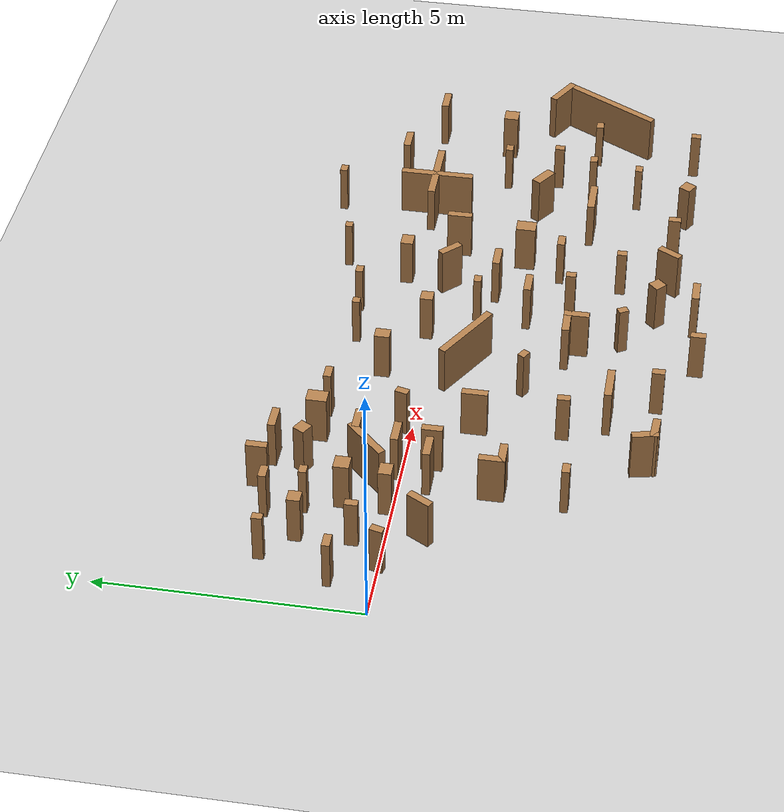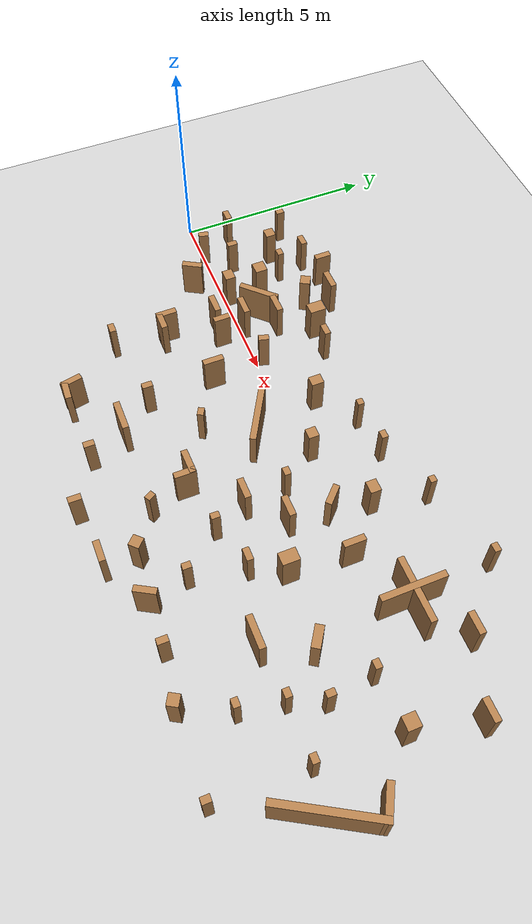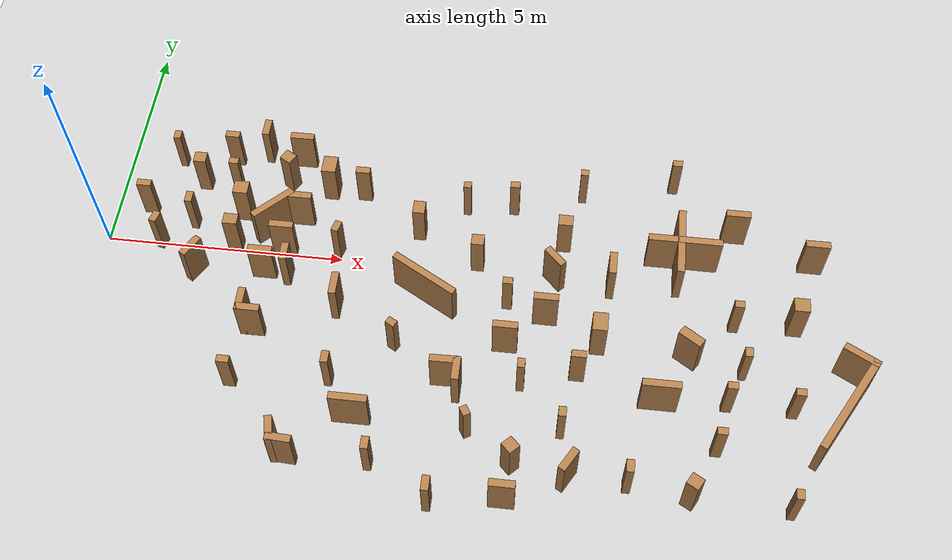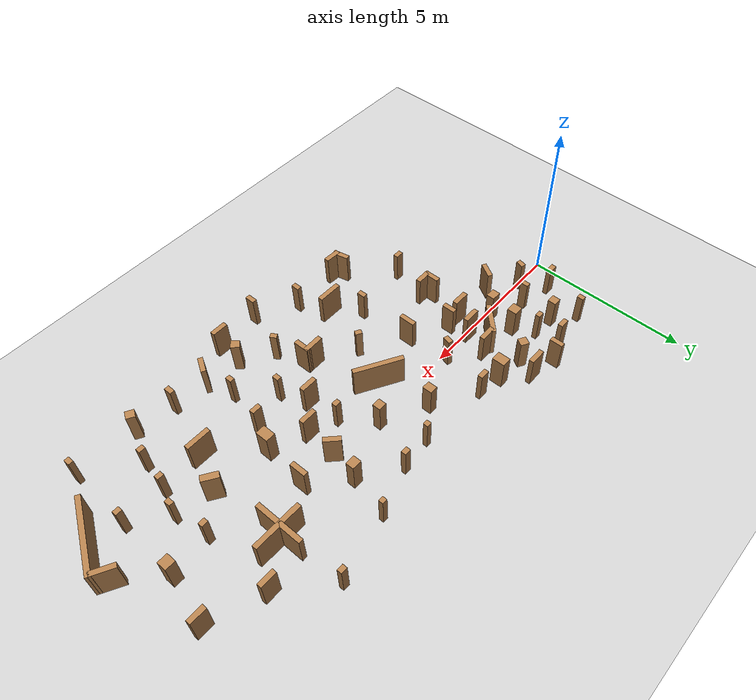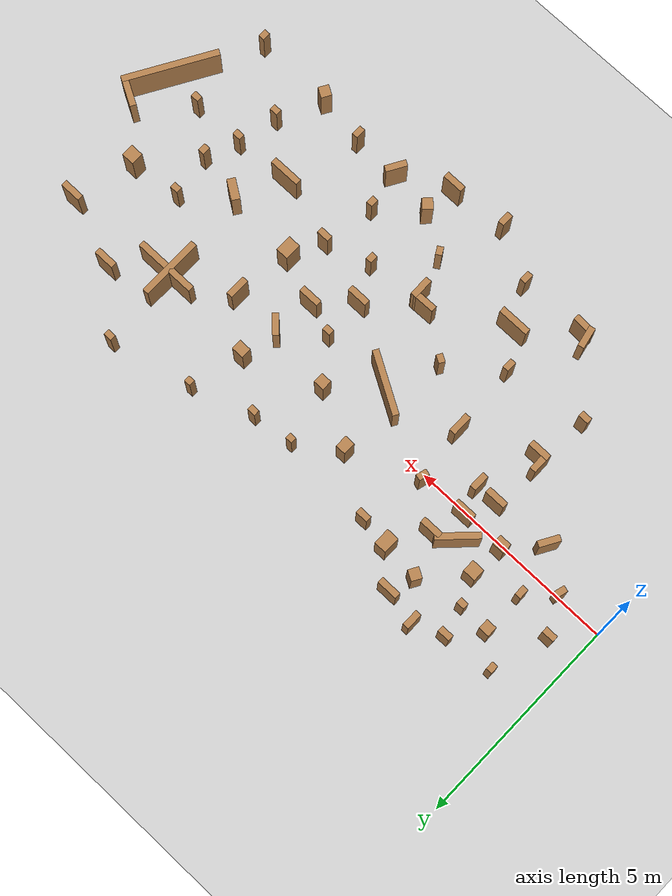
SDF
<sdf version="1.7">
 <world name="default">
  <model name="ground_plane">
   <static>1</static>
   <link name="link">
    <collision name="collision">
     <geometry><plane><normal>0 0 1</normal><size>100 100</size></plane></geometry>
     <surface><friction><ode><mu>100</mu><mu2>50</mu2></ode></friction></surface>
    </collision>
    <visual name="visual">
     <cast_shadows>0</cast_shadows>
     <geometry><plane><normal>0 0 1</normal><size>100 100</size></plane></geometry>
     <material>
      <script><uri>file://media/materials/scripts/gazebo.material</uri><name>Gazebo/Grey</name></script>
     </material>
    </visual>
   </link>
  </model>
  <model name="t2">
   <pose>9.477 -1.34585 0 0 -0 0</pose>
   <link name="Wall_0">
    <collision name="Wall_0_Collision">
     <geometry><box><size>0.5 0.15 1</size></box></geometry>
     <pose>0 0 0.5 0 -0 0</pose>
    </collision>
    <visual name="Wall_0_Visual">
     <pose>0 0 0.5 0 -0 0</pose>
     <geometry><box><size>0.5 0.15 1</size></box></geometry>
     <material>
      <script><uri>file://media/materials/scripts/gazebo.material</uri><name>Gazebo/Wood</name></script>
      <ambient>1 1 1 1</ambient>
     </material>
     <meta><layer>0</layer></meta>
    </visual>
    <pose>-0.130152 0.326907 0 0 -0 0</pose>
   </link>
   <link name="Wall_10">
    <collision name="Wall_10_Collision">
     <geometry><box><size>0.16 0.15 1</size></box></geometry>
     <pose>0 0 0.5 0 -0 0</pose>
    </collision>
    <visual name="Wall_10_Visual">
     <pose>0 0 0.5 0 -0 0</pose>
     <geometry><box><size>0.16 0.15 1</size></box></geometry>
     <material>
      <script><uri>file://media/materials/scripts/gazebo.material</uri><name>Gazebo/Wood</name></script>
      <ambient>1 1 1 1</ambient>
     </material>
     <meta><layer>0</layer></meta>
    </visual>
    <pose>0.439698 3.46018 0 0 -0 0</pose>
   </link>
   <link name="Wall_101">
    <collision name="Wall_101_Collision">
     <geometry><box><size>0.3 0.25 1</size></box></geometry>
     <pose>0 0 0.5 0 -0 0</pose>
    </collision>
    <visual name="Wall_101_Visual">
     <pose>0 0 0.5 0 -0 0</pose>
     <geometry><box><size>0.3 0.25 1</size></box></geometry>
     <material>
      <script><uri>file://media/materials/scripts/gazebo.material</uri><name>Gazebo/Wood</name></script>
      <ambient>1 1 1 1</ambient>
     </material>
     <meta><layer>0</layer></meta>
    </visual>
    <pose>0.122968 2.19661 0 0 -0 0</pose>
   </link>
   <link name="Wall_103">
    <collision name="Wall_103_Collision">
     <geometry><box><size>0.3 0.25 1</size></box></geometry>
     <pose>0 0 0.5 0 -0 0</pose>
    </collision>
    <visual name="Wall_103_Visual">
     <pose>0 0 0.5 0 -0 0</pose>
     <geometry><box><size>0.3 0.25 1</size></box></geometry>
     <material>
      <script><uri>file://media/materials/scripts/gazebo.material</uri><name>Gazebo/Wood</name></script>
      <ambient>1 1 1 1</ambient>
     </material>
     <meta><layer>0</layer></meta>
    </visual>
    <pose>-2.92493 2.19276 0 0 -0 -1.5708</pose>
   </link>
   <link name="Wall_105">
    <collision name="Wall_105_Collision">
     <geometry><box><size>0.4 0.15 1</size></box></geometry>
     <pose>0 0 0.5 0 -0 0</pose>
    </collision>
    <visual name="Wall_105_Visual">
     <pose>0 0 0.5 0 -0 0</pose>
     <geometry><box><size>0.4 0.15 1</size></box></geometry>
     <material>
      <script><uri>file://media/materials/scripts/gazebo.material</uri><name>Gazebo/Wood</name></script>
      <ambient>1 1 1 1</ambient>
     </material>
     <meta><layer>0</layer></meta>
    </visual>
    <pose>-5.50813 0.818499 0 0 -0 -1.5708</pose>
   </link>
   <link name="Wall_12">
    <collision name="Wall_12_Collision">
     <geometry><box><size>0.2 0.15 1</size></box></geometry>
     <pose>0 0 0.5 0 -0 0</pose>
    </collision>
    <visual name="Wall_12_Visual">
     <pose>0 0 0.5 0 -0 0</pose>
     <geometry><box><size>0.2 0.15 1</size></box></geometry>
     <material>
      <script><uri>file://media/materials/scripts/gazebo.material</uri><name>Gazebo/Wood</name></script>
      <ambient>1 1 1 1</ambient>
     </material>
     <meta><layer>0</layer></meta>
    </visual>
    <pose>-1.45246 -2.325 0 0 -0 -1.0472</pose>
   </link>
   <link name="Wall_14">
    <collision name="Wall_14_Collision">
     <geometry><box><size>0.3 0.15 1</size></box></geometry>
     <pose>0 0 0.5 0 -0 0</pose>
    </collision>
    <visual name="Wall_14_Visual">
     <pose>0 0 0.5 0 -0 0</pose>
     <geometry><box><size>0.3 0.15 1</size></box></geometry>
     <material>
      <script><uri>file://media/materials/scripts/gazebo.material</uri><name>Gazebo/Wood</name></script>
      <ambient>1 1 1 1</ambient>
     </material>
     <meta><layer>0</layer></meta>
    </visual>
    <pose>-1.99761 -3.83881 0 0 -0 -1.5708</pose>
   </link>
   <link name="Wall_16">
    <collision name="Wall_16_Collision">
     <geometry><box><size>0.500019 0.15 1</size></box></geometry>
     <pose>0 0 0.5 0 -0 0</pose>
    </collision>
    <visual name="Wall_16_Visual">
     <pose>0 0 0.5 0 -0 0</pose>
     <geometry><box><size>0.500019 0.15 1</size></box></geometry>
     <material>
      <script><uri>file://media/materials/scripts/gazebo.material</uri><name>Gazebo/Wood</name></script>
      <ambient>1 1 1 1</ambient>
     </material>
     <meta><layer>0</layer></meta>
    </visual>
    <pose>-0.024389 1.30143 0 0 -0 -0.783378</pose>
   </link>
   <link name="Wall_18">
    <collision name="Wall_18_Collision">
     <geometry><box><size>0.2 0.15 1</size></box></geometry>
     <pose>0 0 0.5 0 -0 0</pose>
    </collision>
    <visual name="Wall_18_Visual">
     <pose>0 0 0.5 0 -0 0</pose>
     <geometry><box><size>0.2 0.15 1</size></box></geometry>
     <material>
      <script><uri>file://media/materials/scripts/gazebo.material</uri><name>Gazebo/Wood</name></script>
      <ambient>1 1 1 1</ambient>
     </material>
     <meta><layer>0</layer></meta>
    </visual>
    <pose>2.37816 3.91381 0 0 -0 0</pose>
   </link>
   <link name="Wall_2">
    <collision name="Wall_2_Collision">
     <geometry><box><size>0.2 0.15 1</size></box></geometry>
     <pose>0 0 0.5 0 -0 0</pose>
    </collision>
    <visual name="Wall_2_Visual">
     <pose>0 0 0.5 0 -0 0</pose>
     <geometry><box><size>0.2 0.15 1</size></box></geometry>
     <material>
      <script><uri>file://media/materials/scripts/gazebo.material</uri><name>Gazebo/Wood</name></script>
      <ambient>1 1 1 1</ambient>
     </material>
     <meta><layer>0</layer></meta>
    </visual>
    <pose>3.54585 -1.24552 0 0 -0 3.14159</pose>
   </link>
   <link name="Wall_21">
    <collision name="Wall_21_Collision">
     <geometry><box><size>0.500017 0.2 1</size></box></geometry>
     <pose>0 0 0.5 0 -0 0</pose>
    </collision>
    <visual name="Wall_21_Visual">
     <pose>0 0 0.5 0 -0 0</pose>
     <geometry><box><size>0.500017 0.2 1</size></box></geometry>
     <material>
      <script><uri>file://media/materials/scripts/gazebo.material</uri><name>Gazebo/Wood</name></script>
      <ambient>1 1 1 1</ambient>
     </material>
     <meta><layer>0</layer></meta>
    </visual>
    <pose>2.75007 -0.265774 0 0 -0 -0.586607</pose>
   </link>
   <link name="Wall_23">
    <collision name="Wall_23_Collision">
     <geometry><box><size>0.16 0.15 1</size></box></geometry>
     <pose>0 0 0.5 0 -0 0</pose>
    </collision>
    <visual name="Wall_23_Visual">
     <pose>0 0 0.5 0 -0 0</pose>
     <geometry><box><size>0.16 0.15 1</size></box></geometry>
     <material>
      <script><uri>file://media/materials/scripts/gazebo.material</uri><name>Gazebo/Wood</name></script>
      <ambient>1 1 1 1</ambient>
     </material>
     <meta><layer>0</layer></meta>
    </visual>
    <pose>-1.98862 2.87531 0 0 -0 0</pose>
   </link>
   <link name="Wall_25">
    <collision name="Wall_25_Collision">
     <geometry><box><size>0.2 0.15 1</size></box></geometry>
     <pose>0 0 0.5 0 -0 0</pose>
    </collision>
    <visual name="Wall_25_Visual">
     <pose>0 0 0.5 0 -0 0</pose>
     <geometry><box><size>0.2 0.15 1</size></box></geometry>
     <material>
      <script><uri>file://media/materials/scripts/gazebo.material</uri><name>Gazebo/Wood</name></script>
      <ambient>1 1 1 1</ambient>
     </material>
     <meta><layer>0</layer></meta>
    </visual>
    <pose>0.370845 -2.14189 0 0 -0 -1.5708</pose>
   </link>
   <link name="Wall_27">
    <collision name="Wall_27_Collision">
     <geometry><box><size>0.2 0.15 1</size></box></geometry>
     <pose>0 0 0.5 0 -0 0</pose>
    </collision>
    <visual name="Wall_27_Visual">
     <pose>0 0 0.5 0 -0 0</pose>
     <geometry><box><size>0.2 0.15 1</size></box></geometry>
     <material>
      <script><uri>file://media/materials/scripts/gazebo.material</uri><name>Gazebo/Wood</name></script>
      <ambient>1 1 1 1</ambient>
     </material>
     <meta><layer>0</layer></meta>
    </visual>
    <pose>3.35254 -2.21746 0 0 -0 0</pose>
   </link>
   <link name="Wall_29">
    <collision name="Wall_29_Collision">
     <geometry><box><size>0.2 0.15 1</size></box></geometry>
     <pose>0 0 0.5 0 -0 0</pose>
    </collision>
    <visual name="Wall_29_Visual">
     <pose>0 0 0.5 0 -0 0</pose>
     <geometry><box><size>0.2 0.15 1</size></box></geometry>
     <material>
      <script><uri>file://media/materials/scripts/gazebo.material</uri><name>Gazebo/Wood</name></script>
      <ambient>1 1 1 1</ambient>
     </material>
     <meta><layer>0</layer></meta>
    </visual>
    <pose>-3.10015 -0.580524 0 0 -0 -0.523599</pose>
   </link>
   <link name="Wall_31">
    <collision name="Wall_31_Collision">
     <geometry><box><size>0.508166 0.15 1</size></box></geometry>
     <pose>0 0 0.5 0 -0 0</pose>
    </collision>
    <visual name="Wall_31_Visual">
     <pose>0 0 0.5 0 -0 0</pose>
     <geometry><box><size>0.508166 0.15 1</size></box></geometry>
     <material>
      <script><uri>file://media/materials/scripts/gazebo.material</uri><name>Gazebo/Wood</name></script>
      <ambient>1 1 1 1</ambient>
     </material>
     <meta><layer>0</layer></meta>
    </visual>
    <pose>-5.04159 -3.07681 0 0 -0 -1.35685</pose>
   </link>
   <link name="Wall_32">
    <collision name="Wall_32_Collision">
     <geometry><box><size>0.500227 0.15 1</size></box></geometry>
     <pose>0 0 0.5 0 -0 0</pose>
    </collision>
    <visual name="Wall_32_Visual">
     <pose>0 0 0.5 0 -0 0</pose>
     <geometry><box><size>0.500227 0.15 1</size></box></geometry>
     <material>
      <script><uri>file://media/materials/scripts/gazebo.material</uri><name>Gazebo/Wood</name></script>
      <ambient>1 1 1 1</ambient>
     </material>
     <meta><layer>0</layer></meta>
    </visual>
    <pose>-4.82873 -3.24641 0 0 -0 -0.056063</pose>
   </link>
   <link name="Wall_34">
    <collision name="Wall_34_Collision">
     <geometry><box><size>0.26 0.25 1</size></box></geometry>
     <pose>0 0 0.5 0 -0 0</pose>
    </collision>
    <visual name="Wall_34_Visual">
     <pose>0 0 0.5 0 -0 0</pose>
     <geometry><box><size>0.26 0.25 1</size></box></geometry>
     <material>
      <script><uri>file://media/materials/scripts/gazebo.material</uri><name>Gazebo/Wood</name></script>
      <ambient>1 1 1 1</ambient>
     </material>
     <meta><layer>0</layer></meta>
    </visual>
    <pose>-0.533461 -2.92927 0 0 -0 -0.785398</pose>
   </link>
   <link name="Wall_36">
    <collision name="Wall_36_Collision">
     <geometry><box><size>0.26 0.25 1</size></box></geometry>
     <pose>0 0 0.5 0 -0 0</pose>
    </collision>
    <visual name="Wall_36_Visual">
     <pose>0 0 0.5 0 -0 0</pose>
     <geometry><box><size>0.26 0.25 1</size></box></geometry>
     <material>
      <script><uri>file://media/materials/scripts/gazebo.material</uri><name>Gazebo/Wood</name></script>
      <ambient>1 1 1 1</ambient>
     </material>
     <meta><layer>0</layer></meta>
    </visual>
    <pose>-1.62773 1.52325 0 0 -0 0</pose>
   </link>
   <link name="Wall_38">
    <collision name="Wall_38_Collision">
     <geometry><box><size>0.26 0.25 1</size></box></geometry>
     <pose>0 0 0.5 0 -0 0</pose>
    </collision>
    <visual name="Wall_38_Visual">
     <pose>0 0 0.5 0 -0 0</pose>
     <geometry><box><size>0.26 0.25 1</size></box></geometry>
     <material>
      <script><uri>file://media/materials/scripts/gazebo.material</uri><name>Gazebo/Wood</name></script>
      <ambient>1 1 1 1</ambient>
     </material>
     <meta><layer>0</layer></meta>
    </visual>
    <pose>2.86753 -3.2752 0 0 -0 -0.523599</pose>
   </link>
   <link name="Wall_4">
    <collision name="Wall_4_Collision">
     <geometry><box><size>0.2 0.15 1</size></box></geometry>
     <pose>0 0 0.5 0 -0 0</pose>
    </collision>
    <visual name="Wall_4_Visual">
     <pose>0 0 0.5 0 -0 0</pose>
     <geometry><box><size>0.2 0.15 1</size></box></geometry>
     <material>
      <script><uri>file://media/materials/scripts/gazebo.material</uri><name>Gazebo/Wood</name></script>
      <ambient>1 1 1 1</ambient>
     </material>
     <meta><layer>0</layer></meta>
    </visual>
    <pose>4.75542 -3.31691 0 0 -0 -1.5708</pose>
   </link>
   <link name="Wall_40">
    <collision name="Wall_40_Collision">
     <geometry><box><size>0.750073 0.15 1</size></box></geometry>
     <pose>0 0 0.5 0 -0 0</pose>
    </collision>
    <visual name="Wall_40_Visual">
     <pose>0 0 0.5 0 -0 0</pose>
     <geometry><box><size>0.750073 0.15 1</size></box></geometry>
     <material>
      <script><uri>file://media/materials/scripts/gazebo.material</uri><name>Gazebo/Wood</name></script>
      <ambient>1 1 1 1</ambient>
     </material>
     <meta><layer>0</layer></meta>
    </visual>
    <pose>6.01518 -0.316427 0 0 -0 -0.505142</pose>
   </link>
   <link name="Wall_41">
    <collision name="Wall_41_Collision">
     <geometry><box><size>2.25 0.15 1</size></box></geometry>
     <pose>0 0 0.5 0 -0 0</pose>
    </collision>
    <visual name="Wall_41_Visual">
     <pose>0 0 0.5 0 -0 0</pose>
     <geometry><box><size>2.25 0.15 1</size></box></geometry>
     <material>
      <script><uri>file://media/materials/scripts/gazebo.material</uri><name>Gazebo/Wood</name></script>
      <ambient>1 1 1 1</ambient>
     </material>
     <meta><layer>0</layer></meta>
    </visual>
    <pose>5.75275 -1.37095 0 0 -0 -2.0944</pose>
   </link>
   <link name="Wall_43">
    <collision name="Wall_43_Collision">
     <geometry><box><size>0.999942 0.15 1</size></box></geometry>
     <pose>0 0 0.5 0 -0 0</pose>
    </collision>
    <visual name="Wall_43_Visual">
     <pose>0 0 0.5 0 -0 0</pose>
     <geometry><box><size>0.999942 0.15 1</size></box></geometry>
     <material>
      <script><uri>file://media/materials/scripts/gazebo.material</uri><name>Gazebo/Wood</name></script>
      <ambient>1 1 1 1</ambient>
     </material>
     <meta><layer>0</layer></meta>
    </visual>
    <pose>-5.97363 1.97944 0 0 -0 -2.35619</pose>
   </link>
   <link name="Wall_45">
    <collision name="Wall_45_Collision">
     <geometry><box><size>1.49988 0.15 1</size></box></geometry>
     <pose>0 0 0.5 0 -0 0</pose>
    </collision>
    <visual name="Wall_45_Visual">
     <pose>0 0 0.5 0 -0 0</pose>
     <geometry><box><size>1.49988 0.15 1</size></box></geometry>
     <material>
      <script><uri>file://media/materials/scripts/gazebo.material</uri><name>Gazebo/Wood</name></script>
      <ambient>1 1 1 1</ambient>
     </material>
     <meta><layer>0</layer></meta>
    </visual>
    <pose>-2.61065 0.609908 0 0 -0 -0.523649</pose>
   </link>
   <link name="Wall_47">
    <collision name="Wall_47_Collision">
     <geometry><box><size>0.5 0.15 1</size></box></geometry>
     <pose>0 0 0.5 0 -0 0</pose>
    </collision>
    <visual name="Wall_47_Visual">
     <pose>0 0 0.5 0 -0 0</pose>
     <geometry><box><size>0.5 0.15 1</size></box></geometry>
     <material>
      <script><uri>file://media/materials/scripts/gazebo.material</uri><name>Gazebo/Wood</name></script>
      <ambient>1 1 1 1</ambient>
     </material>
     <meta><layer>0</layer></meta>
    </visual>
    <pose>1.146 1.27002 0 0 -0 -1.5708</pose>
   </link>
   <link name="Wall_49">
    <collision name="Wall_49_Collision">
     <geometry><box><size>0.2 0.15 1</size></box></geometry>
     <pose>0 0 0.5 0 -0 0</pose>
    </collision>
    <visual name="Wall_49_Visual">
     <pose>0 0 0.5 0 -0 0</pose>
     <geometry><box><size>0.2 0.15 1</size></box></geometry>
     <material>
      <script><uri>file://media/materials/scripts/gazebo.material</uri><name>Gazebo/Wood</name></script>
      <ambient>1 1 1 1</ambient>
     </material>
     <meta><layer>0</layer></meta>
    </visual>
    <pose>-0.993373 2.98531 0 0 -0 0</pose>
   </link>
   <link name="Wall_51">
    <collision name="Wall_51_Collision">
     <geometry><box><size>0.598262 0.15 1</size></box></geometry>
     <pose>0 0 0.5 0 -0 0</pose>
    </collision>
    <visual name="Wall_51_Visual">
     <pose>0 0 0.5 0 -0 0</pose>
     <geometry><box><size>0.598262 0.15 1</size></box></geometry>
     <material>
      <script><uri>file://media/materials/scripts/gazebo.material</uri><name>Gazebo/Wood</name></script>
      <ambient>1 1 1 1</ambient>
     </material>
     <meta><layer>0</layer></meta>
    </visual>
    <pose>-1.96313 -1.27796 0 0 -0 0.021322</pose>
   </link>
   <link name="Wall_52">
    <collision name="Wall_52_Collision">
     <geometry><box><size>0.5 0.15 1</size></box></geometry>
     <pose>0 0 0.5 0 -0 0</pose>
    </collision>
    <visual name="Wall_52_Visual">
     <pose>0 0 0.5 0 -0 0</pose>
     <geometry><box><size>0.5 0.15 1</size></box></geometry>
     <material>
      <script><uri>file://media/materials/scripts/gazebo.material</uri><name>Gazebo/Wood</name></script>
      <ambient>1 1 1 1</ambient>
     </material>
     <meta><layer>0</layer></meta>
    </visual>
    <pose>-1.72384 -1.44818 0 0 -0 -1.5708</pose>
   </link>
   <link name="Wall_54">
    <collision name="Wall_54_Collision">
     <geometry><box><size>0.5 0.15 1</size></box></geometry>
     <pose>0 0 0.5 0 -0 0</pose>
    </collision>
    <visual name="Wall_54_Visual">
     <pose>0 0 0.5 0 -0 0</pose>
     <geometry><box><size>0.5 0.15 1</size></box></geometry>
     <material>
      <script><uri>file://media/materials/scripts/gazebo.material</uri><name>Gazebo/Wood</name></script>
      <ambient>1 1 1 1</ambient>
     </material>
     <meta><layer>0</layer></meta>
    </visual>
    <pose>5.26766 2.16625 0 0 -0 0</pose>
   </link>
   <link name="Wall_56">
    <collision name="Wall_56_Collision">
     <geometry><box><size>0.25 0.15 1</size></box></geometry>
     <pose>0 0 0.5 0 -0 0</pose>
    </collision>
    <visual name="Wall_56_Visual">
     <pose>0 0 0.5 0 -0 0</pose>
     <geometry><box><size>0.25 0.15 1</size></box></geometry>
     <material>
      <script><uri>file://media/materials/scripts/gazebo.material</uri><name>Gazebo/Wood</name></script>
      <ambient>1 1 1 1</ambient>
     </material>
     <meta><layer>0</layer></meta>
    </visual>
    <pose>-4.26161 -1.48281 0 0 -0 -1.5708</pose>
   </link>
   <link name="Wall_58">
    <collision name="Wall_58_Collision">
     <geometry><box><size>0.5 0.15 1</size></box></geometry>
     <pose>0 0 0.5 0 -0 0</pose>
    </collision>
    <visual name="Wall_58_Visual">
     <pose>0 0 0.5 0 -0 0</pose>
     <geometry><box><size>0.5 0.15 1</size></box></geometry>
     <material>
      <script><uri>file://media/materials/scripts/gazebo.material</uri><name>Gazebo/Wood</name></script>
      <ambient>1 1 1 1</ambient>
     </material>
     <meta><layer>0</layer></meta>
    </visual>
    <pose>-0.87816 -0.39501 0 0 -0 0</pose>
   </link>
   <link name="Wall_6">
    <collision name="Wall_6_Collision">
     <geometry><box><size>0.25 0.15 1</size></box></geometry>
     <pose>0 0 0.5 0 -0 0</pose>
    </collision>
    <visual name="Wall_6_Visual">
     <pose>0 0 0.5 0 -0 0</pose>
     <geometry><box><size>0.25 0.15 1</size></box></geometry>
     <material>
      <script><uri>file://media/materials/scripts/gazebo.material</uri><name>Gazebo/Wood</name></script>
      <ambient>1 1 1 1</ambient>
     </material>
     <meta><layer>0</layer></meta>
    </visual>
    <pose>1.68326 -3.09857 0 0 -0 -1.5708</pose>
   </link>
   <link name="Wall_60">
    <collision name="Wall_60_Collision">
     <geometry><box><size>0.3 0.15 1</size></box></geometry>
     <pose>0 0 0.5 0 -0 0</pose>
    </collision>
    <visual name="Wall_60_Visual">
     <pose>0 0 0.5 0 -0 0</pose>
     <geometry><box><size>0.3 0.15 1</size></box></geometry>
     <material>
      <script><uri>file://media/materials/scripts/gazebo.material</uri><name>Gazebo/Wood</name></script>
      <ambient>1 1 1 1</ambient>
     </material>
     <meta><layer>0</layer></meta>
    </visual>
    <pose>0.598355 -0.887042 0 0 -0 0</pose>
   </link>
   <link name="Wall_62">
    <collision name="Wall_62_Collision">
     <geometry><box><size>0.2 0.15 1</size></box></geometry>
     <pose>0 0 0.5 0 -0 0</pose>
    </collision>
    <visual name="Wall_62_Visual">
     <pose>0 0 0.5 0 -0 0</pose>
     <geometry><box><size>0.2 0.15 1</size></box></geometry>
     <material>
      <script><uri>file://media/materials/scripts/gazebo.material</uri><name>Gazebo/Wood</name></script>
      <ambient>1 1 1 1</ambient>
     </material>
     <meta><layer>0</layer></meta>
    </visual>
    <pose>-0.491443 -1.2036 0 0 -0 -1.5708</pose>
   </link>
   <link name="Wall_64">
    <collision name="Wall_64_Collision">
     <geometry><box><size>0.5 0.15 1</size></box></geometry>
     <pose>0 0 0.5 0 -0 0</pose>
    </collision>
    <visual name="Wall_64_Visual">
     <pose>0 0 0.5 0 -0 0</pose>
     <geometry><box><size>0.5 0.15 1</size></box></geometry>
     <material>
      <script><uri>file://media/materials/scripts/gazebo.material</uri><name>Gazebo/Wood</name></script>
      <ambient>1 1 1 1</ambient>
     </material>
     <meta><layer>0</layer></meta>
    </visual>
    <pose>0.55489 -3.08831 0 0 -0 -2.09455</pose>
   </link>
   <link name="Wall_66">
    <collision name="Wall_66_Collision">
     <geometry><box><size>0.2 0.15 1</size></box></geometry>
     <pose>0 0 0.5 0 -0 0</pose>
    </collision>
    <visual name="Wall_66_Visual">
     <pose>0 0 0.5 0 -0 0</pose>
     <geometry><box><size>0.2 0.15 1</size></box></geometry>
     <material>
      <script><uri>file://media/materials/scripts/gazebo.material</uri><name>Gazebo/Wood</name></script>
      <ambient>1 1 1 1</ambient>
     </material>
     <meta><layer>0</layer></meta>
    </visual>
    <pose>3.85538 -0.486843 0 0 -0 -1.5708</pose>
   </link>
   <link name="Wall_68">
    <collision name="Wall_68_Collision">
     <geometry><box><size>0.75 0.15 1</size></box></geometry>
     <pose>0 0 0.5 0 -0 0</pose>
    </collision>
    <visual name="Wall_68_Visual">
     <pose>0 0 0.5 0 -0 0</pose>
     <geometry><box><size>0.75 0.15 1</size></box></geometry>
     <material>
      <script><uri>file://media/materials/scripts/gazebo.material</uri><name>Gazebo/Wood</name></script>
      <ambient>1 1 1 1</ambient>
     </material>
     <meta><layer>0</layer></meta>
    </visual>
    <pose>-3.68461 -2.28881 0 0 -0 0</pose>
   </link>
   <link name="Wall_70">
    <collision name="Wall_70_Collision">
     <geometry><box><size>0.3 0.15 1</size></box></geometry>
     <pose>0 0 0.5 0 -0 0</pose>
    </collision>
    <visual name="Wall_70_Visual">
     <pose>0 0 0.5 0 -0 0</pose>
     <geometry><box><size>0.3 0.15 1</size></box></geometry>
     <material>
      <script><uri>file://media/materials/scripts/gazebo.material</uri><name>Gazebo/Wood</name></script>
      <ambient>1 1 1 1</ambient>
     </material>
     <meta><layer>0</layer></meta>
    </visual>
    <pose>-4.23068 3.01284 0 0 -0 0</pose>
   </link>
   <link name="Wall_72">
    <collision name="Wall_72_Collision">
     <geometry><box><size>0.2 0.15 1</size></box></geometry>
     <pose>0 0 0.5 0 -0 0</pose>
    </collision>
    <visual name="Wall_72_Visual">
     <pose>0 0 0.5 0 -0 0</pose>
     <geometry><box><size>0.2 0.15 1</size></box></geometry>
     <material>
      <script><uri>file://media/materials/scripts/gazebo.material</uri><name>Gazebo/Wood</name></script>
      <ambient>1 1 1 1</ambient>
     </material>
     <meta><layer>0</layer></meta>
    </visual>
    <pose>4.83047 -1.24799 0 0 -0 0</pose>
   </link>
   <link name="Wall_74">
    <collision name="Wall_74_Collision">
     <geometry><box><size>0.2 0.15 1</size></box></geometry>
     <pose>0 0 0.5 0 -0 0</pose>
    </collision>
    <visual name="Wall_74_Visual">
     <pose>0 0 0.5 0 -0 0</pose>
     <geometry><box><size>0.2 0.15 1</size></box></geometry>
     <material>
      <script><uri>file://media/materials/scripts/gazebo.material</uri><name>Gazebo/Wood</name></script>
      <ambient>1 1 1 1</ambient>
     </material>
     <meta><layer>0</layer></meta>
    </visual>
    <pose>3.67856 0.567758 0 0 -0 0</pose>
   </link>
   <link name="Wall_76">
    <collision name="Wall_76_Collision">
     <geometry><box><size>0.5 0.15 1</size></box></geometry>
     <pose>0 0 0.5 0 -0 0</pose>
    </collision>
    <visual name="Wall_76_Visual">
     <pose>0 0 0.5 0 -0 0</pose>
     <geometry><box><size>0.5 0.15 1</size></box></geometry>
     <material>
      <script><uri>file://media/materials/scripts/gazebo.material</uri><name>Gazebo/Wood</name></script>
      <ambient>1 1 1 1</ambient>
     </material>
     <meta><layer>0</layer></meta>
    </visual>
    <pose>-0.61761 -3.69981 0 0 -0 0</pose>
   </link>
   <link name="Wall_78">
    <collision name="Wall_78_Collision">
     <geometry><box><size>0.31 0.3 1</size></box></geometry>
     <pose>0 0 0.5 0 -0 0</pose>
    </collision>
    <visual name="Wall_78_Visual">
     <pose>0 0 0.5 0 -0 0</pose>
     <geometry><box><size>0.31 0.3 1</size></box></geometry>
     <material>
      <script><uri>file://media/materials/scripts/gazebo.material</uri><name>Gazebo/Wood</name></script>
      <ambient>1 1 1 1</ambient>
     </material>
     <meta><layer>0</layer></meta>
    </visual>
    <pose>4.89994 0.68305 0 0 -0 0</pose>
   </link>
   <link name="Wall_8">
    <collision name="Wall_8_Collision">
     <geometry><box><size>0.25 0.15 1</size></box></geometry>
     <pose>0 0 0.5 0 -0 0</pose>
    </collision>
    <visual name="Wall_8_Visual">
     <pose>0 0 0.5 0 -0 0</pose>
     <geometry><box><size>0.25 0.15 1</size></box></geometry>
     <material>
      <script><uri>file://media/materials/scripts/gazebo.material</uri><name>Gazebo/Wood</name></script>
      <ambient>1 1 1 1</ambient>
     </material>
     <meta><layer>0</layer></meta>
    </visual>
    <pose>-3.21361 -3.17481 0 0 -0 -1.5708</pose>
   </link>
   <link name="Wall_80">
    <collision name="Wall_80_Collision">
     <geometry><box><size>0.4 0.3 1</size></box></geometry>
     <pose>0 0 0.5 0 -0 0</pose>
    </collision>
    <visual name="Wall_80_Visual">
     <pose>0 0 0.5 0 -0 0</pose>
     <geometry><box><size>0.4 0.3 1</size></box></geometry>
     <material>
      <script><uri>file://media/materials/scripts/gazebo.material</uri><name>Gazebo/Wood</name></script>
      <ambient>1 1 1 1</ambient>
     </material>
     <meta><layer>0</layer></meta>
    </visual>
    <pose>0.96775 -0.124745 0 0 -0 1.5708</pose>
   </link>
   <link name="Wall_82">
    <collision name="Wall_82_Collision">
     <geometry><box><size>1.5 0.15 1</size></box></geometry>
     <pose>0 0 0.5 0 -0 0</pose>
    </collision>
    <visual name="Wall_82_Visual">
     <pose>0 0 0.5 0 -0 0</pose>
     <geometry><box><size>1.5 0.15 1</size></box></geometry>
     <material>
      <script><uri>file://media/materials/scripts/gazebo.material</uri><name>Gazebo/Wood</name></script>
      <ambient>1 1 1 1</ambient>
     </material>
     <meta><layer>0</layer></meta>
    </visual>
    <pose>2.50603 1.95445 0 0 -0 -1.5708</pose>
   </link>
   <link name="Wall_84">
    <collision name="Wall_84_Collision">
     <geometry><box><size>1.5 0.15 1</size></box></geometry>
     <pose>0 0 0.5 0 -0 0</pose>
    </collision>
    <visual name="Wall_84_Visual">
     <pose>0 0 0.5 0 -0 0</pose>
     <geometry><box><size>1.5 0.15 1</size></box></geometry>
     <material>
      <script><uri>file://media/materials/scripts/gazebo.material</uri><name>Gazebo/Wood</name></script>
      <ambient>1 1 1 1</ambient>
     </material>
     <meta><layer>0</layer></meta>
    </visual>
    <pose>2.58723 1.98255 0 0 -0 0</pose>
   </link>
   <link name="Wall_86">
    <collision name="Wall_86_Collision">
     <geometry><box><size>0.75 0.15 1</size></box></geometry>
     <pose>0 0 0.5 0 -0 0</pose>
    </collision>
    <visual name="Wall_86_Visual">
     <pose>0 0 0.5 0 -0 0</pose>
     <geometry><box><size>0.75 0.15 1</size></box></geometry>
     <material>
      <script><uri>file://media/materials/scripts/gazebo.material</uri><name>Gazebo/Wood</name></script>
      <ambient>1 1 1 1</ambient>
     </material>
     <meta><layer>0</layer></meta>
    </visual>
    <pose>2.20595 -1.35182 0 0 -0 0</pose>
   </link>
   <link name="Wall_88">
    <collision name="Wall_88_Collision">
     <geometry><box><size>0.5 0.15 1</size></box></geometry>
     <pose>0 0 0.5 0 -0 0</pose>
    </collision>
    <visual name="Wall_88_Visual">
     <pose>0 0 0.5 0 -0 0</pose>
     <geometry><box><size>0.5 0.15 1</size></box></geometry>
     <material>
      <script><uri>file://media/materials/scripts/gazebo.material</uri><name>Gazebo/Wood</name></script>
      <ambient>1 1 1 1</ambient>
     </material>
     <meta><layer>0</layer></meta>
    </visual>
    <pose>-6.15761 -0.380808 0 0 -0 -1.5708</pose>
   </link>
   <link name="Wall_89">
    <collision name="Wall_89_Collision">
     <geometry><box><size>0.5 0.15 1</size></box></geometry>
     <pose>0 0 0.5 0 -0 0</pose>
    </collision>
    <visual name="Wall_89_Visual">
     <pose>0 0 0.5 0 -0 0</pose>
     <geometry><box><size>0.5 0.15 1</size></box></geometry>
     <material>
      <script><uri>file://media/materials/scripts/gazebo.material</uri><name>Gazebo/Wood</name></script>
      <ambient>1 1 1 1</ambient>
     </material>
     <meta><layer>0</layer></meta>
    </visual>
    <pose>-5.98261 -0.555808 0 0 -0 0</pose>
   </link>
   <link name="Wall_91">
    <collision name="Wall_91_Collision">
     <geometry><box><size>0.25 0.15 1</size></box></geometry>
     <pose>0 0 0.5 0 -0 0</pose>
    </collision>
    <visual name="Wall_91_Visual">
     <pose>0 0 0.5 0 -0 0</pose>
     <geometry><box><size>0.25 0.15 1</size></box></geometry>
     <material>
      <script><uri>file://media/materials/scripts/gazebo.material</uri><name>Gazebo/Wood</name></script>
      <ambient>1 1 1 1</ambient>
     </material>
     <meta><layer>0</layer></meta>
    </visual>
    <pose>-6.19861 -1.74581 0 0 -0 0</pose>
   </link>
   <link name="Wall_93">
    <collision name="Wall_93_Collision">
     <geometry><box><size>0.2 0.15 1</size></box></geometry>
     <pose>0 0 0.5 0 -0 0</pose>
    </collision>
    <visual name="Wall_93_Visual">
     <pose>0 0 0.5 0 -0 0</pose>
     <geometry><box><size>0.2 0.15 1</size></box></geometry>
     <material>
      <script><uri>file://media/materials/scripts/gazebo.material</uri><name>Gazebo/Wood</name></script>
      <ambient>1 1 1 1</ambient>
     </material>
     <meta><layer>0</layer></meta>
    </visual>
    <pose>-0.926504 0.613567 0 0 -0 0</pose>
   </link>
   <link name="Wall_95">
    <collision name="Wall_95_Collision">
     <geometry><box><size>0.25 0.15 1</size></box></geometry>
     <pose>0 0 0.5 0 -0 0</pose>
    </collision>
    <visual name="Wall_95_Visual">
     <pose>0 0 0.5 0 -0 0</pose>
     <geometry><box><size>0.25 0.15 1</size></box></geometry>
     <material>
      <script><uri>file://media/materials/scripts/gazebo.material</uri><name>Gazebo/Wood</name></script>
      <ambient>1 1 1 1</ambient>
     </material>
     <meta><layer>0</layer></meta>
    </visual>
    <pose>-4.54961 1.53669 0 0 -0 -1.83268</pose>
   </link>
   <link name="Wall_97">
    <collision name="Wall_97_Collision">
     <geometry><box><size>0.5 0.15 1</size></box></geometry>
     <pose>0 0 0.5 0 -0 0</pose>
    </collision>
    <visual name="Wall_97_Visual">
     <pose>0 0 0.5 0 -0 0</pose>
     <geometry><box><size>0.5 0.15 1</size></box></geometry>
     <material>
      <script><uri>file://media/materials/scripts/gazebo.material</uri><name>Gazebo/Wood</name></script>
      <ambient>1 1 1 1</ambient>
     </material>
     <meta><layer>0</layer></meta>
    </visual>
    <pose>3.66358 2.74992 0 0 -0 0</pose>
   </link>
   <link name="Wall_99">
    <collision name="Wall_99_Collision">
     <geometry><box><size>0.5 0.15 1</size></box></geometry>
     <pose>0 0 0.5 0 -0 0</pose>
    </collision>
    <visual name="Wall_99_Visual">
     <pose>0 0 0.5 0 -0 0</pose>
     <geometry><box><size>0.5 0.15 1</size></box></geometry>
     <material>
      <script><uri>file://media/materials/scripts/gazebo.material</uri><name>Gazebo/Wood</name></script>
      <ambient>1 1 1 1</ambient>
     </material>
     <meta><layer>0</layer></meta>
    </visual>
    <pose>-4.37461 0.184192 0 0 -0 -1.5708</pose>
   </link>
   <static>1</static>
  </model>
  <model name="t7_0">
   <pose>4.45073 0.538688 0 0 -0 0</pose>
   <link name="Wall_0">
    <collision name="Wall_0_Collision">
     <geometry><box><size>0.5 0.15 1</size></box></geometry>
     <pose>0 0 0.5 0 -0 0</pose>
    </collision>
    <visual name="Wall_0_Visual">
     <pose>0 0 0.5 0 -0 0</pose>
     <geometry><box><size>0.5 0.15 1</size></box></geometry>
     <material>
      <script><uri>file://media/materials/scripts/gazebo.material</uri><name>Gazebo/Wood</name></script>
      <ambient>1 1 1 1</ambient>
     </material>
     <meta><layer>0</layer></meta>
    </visual>
    <pose>-0.649487 1.88869 0 0 -0 0</pose>
   </link>
   <link name="Wall_101">
    <collision name="Wall_101_Collision">
     <geometry><box><size>0.3 0.25 1</size></box></geometry>
     <pose>0 0 0.5 0 -0 0</pose>
    </collision>
    <visual name="Wall_101_Visual">
     <pose>0 0 0.5 0 -0 0</pose>
     <geometry><box><size>0.3 0.25 1</size></box></geometry>
     <material>
      <script><uri>file://media/materials/scripts/gazebo.material</uri><name>Gazebo/Wood</name></script>
      <ambient>1 1 1 1</ambient>
     </material>
     <meta><layer>0</layer></meta>
    </visual>
    <pose>-1.7299 -0.40612 0 0 -0 0</pose>
   </link>
   <link name="Wall_105">
    <collision name="Wall_105_Collision">
     <geometry><box><size>0.4 0.15 1</size></box></geometry>
     <pose>0 0 0.5 0 -0 0</pose>
    </collision>
    <visual name="Wall_105_Visual">
     <pose>0 0 0.5 0 -0 0</pose>
     <geometry><box><size>0.4 0.15 1</size></box></geometry>
     <material>
      <script><uri>file://media/materials/scripts/gazebo.material</uri><name>Gazebo/Wood</name></script>
      <ambient>1 1 1 1</ambient>
     </material>
     <meta><layer>0</layer></meta>
    </visual>
    <pose>-1.44962 2.04439 0 0 -0 -1.5708</pose>
   </link>
   <link name="Wall_36">
    <collision name="Wall_36_Collision">
     <geometry><box><size>0.26 0.25 1</size></box></geometry>
     <pose>0 0 0.5 0 -0 0</pose>
    </collision>
    <visual name="Wall_36_Visual">
     <pose>0 0 0.5 0 -0 0</pose>
     <geometry><box><size>0.26 0.25 1</size></box></geometry>
     <material>
      <script><uri>file://media/materials/scripts/gazebo.material</uri><name>Gazebo/Wood</name></script>
      <ambient>1 1 1 1</ambient>
     </material>
     <meta><layer>0</layer></meta>
    </visual>
    <pose>-2.70321 1.09078 0 0 -0 0</pose>
   </link>
   <link name="Wall_38">
    <collision name="Wall_38_Collision">
     <geometry><box><size>0.26 0.25 1</size></box></geometry>
     <pose>0 0 0.5 0 -0 0</pose>
    </collision>
    <visual name="Wall_38_Visual">
     <pose>0 0 0.5 0 -0 0</pose>
     <geometry><box><size>0.26 0.25 1</size></box></geometry>
     <material>
      <script><uri>file://media/materials/scripts/gazebo.material</uri><name>Gazebo/Wood</name></script>
      <ambient>1 1 1 1</ambient>
     </material>
     <meta><layer>0</layer></meta>
    </visual>
    <pose>-0.842821 1.30664 0 0 -0 -0.523599</pose>
   </link>
   <link name="Wall_54">
    <collision name="Wall_54_Collision">
     <geometry><box><size>0.5 0.15 1</size></box></geometry>
     <pose>0 0 0.5 0 -0 0</pose>
    </collision>
    <visual name="Wall_54_Visual">
     <pose>0 0 0.5 0 -0 0</pose>
     <geometry><box><size>0.5 0.15 1</size></box></geometry>
     <material>
      <script><uri>file://media/materials/scripts/gazebo.material</uri><name>Gazebo/Wood</name></script>
      <ambient>1 1 1 1</ambient>
     </material>
     <meta><layer>0</layer></meta>
    </visual>
    <pose>-0.981633 -1.06267 0 0 -0 0</pose>
   </link>
   <link name="Wall_58">
    <collision name="Wall_58_Collision">
     <geometry><box><size>0.5 0.15 1</size></box></geometry>
     <pose>0 0 0.5 0 -0 0</pose>
    </collision>
    <visual name="Wall_58_Visual">
     <pose>0 0 0.5 0 -0 0</pose>
     <geometry><box><size>0.5 0.15 1</size></box></geometry>
     <material>
      <script><uri>file://media/materials/scripts/gazebo.material</uri><name>Gazebo/Wood</name></script>
      <ambient>1 1 1 1</ambient>
     </material>
     <meta><layer>0</layer></meta>
    </visual>
    <pose>-0.425004 0.347148 0 0 -0 0</pose>
   </link>
   <link name="Wall_60">
    <collision name="Wall_60_Collision">
     <geometry><box><size>0.3 0.15 1</size></box></geometry>
     <pose>0 0 0.5 0 -0 0</pose>
    </collision>
    <visual name="Wall_60_Visual">
     <pose>0 0 0.5 0 -0 0</pose>
     <geometry><box><size>0.3 0.15 1</size></box></geometry>
     <material>
      <script><uri>file://media/materials/scripts/gazebo.material</uri><name>Gazebo/Wood</name></script>
      <ambient>1 1 1 1</ambient>
     </material>
     <meta><layer>0</layer></meta>
    </visual>
    <pose>-3.72546 0.303649 0 0 -0 0</pose>
   </link>
   <link name="Wall_64">
    <collision name="Wall_64_Collision">
     <geometry><box><size>0.499906 0.15 1</size></box></geometry>
     <pose>0 0 0.5 0 -0 0</pose>
    </collision>
    <visual name="Wall_64_Visual">
     <pose>0 0 0.5 0 -0 0</pose>
     <geometry><box><size>0.499906 0.15 1</size></box></geometry>
     <material>
      <script><uri>file://media/materials/scripts/gazebo.material</uri><name>Gazebo/Wood</name></script>
      <ambient>1 1 1 1</ambient>
     </material>
     <meta><layer>0</layer></meta>
    </visual>
    <pose>-2.40422 -1.13934 0 0 -0 -2.09455</pose>
   </link>
   <link name="Wall_66">
    <collision name="Wall_66_Collision">
     <geometry><box><size>0.2 0.15 1</size></box></geometry>
     <pose>0 0 0.5 0 -0 0</pose>
    </collision>
    <visual name="Wall_66_Visual">
     <pose>0 0 0.5 0 -0 0</pose>
     <geometry><box><size>0.2 0.15 1</size></box></geometry>
     <material>
      <script><uri>file://media/materials/scripts/gazebo.material</uri><name>Gazebo/Wood</name></script>
      <ambient>1 1 1 1</ambient>
     </material>
     <meta><layer>0</layer></meta>
    </visual>
    <pose>-3.32256 1.63712 0 0 -0 -1.5708</pose>
   </link>
   <link name="Wall_70">
    <collision name="Wall_70_Collision">
     <geometry><box><size>0.3 0.15 1</size></box></geometry>
     <pose>0 0 0.5 0 -0 0</pose>
    </collision>
    <visual name="Wall_70_Visual">
     <pose>0 0 0.5 0 -0 0</pose>
     <geometry><box><size>0.3 0.15 1</size></box></geometry>
     <material>
      <script><uri>file://media/materials/scripts/gazebo.material</uri><name>Gazebo/Wood</name></script>
      <ambient>1 1 1 1</ambient>
     </material>
     <meta><layer>0</layer></meta>
    </visual>
    <pose>-2.14832 1.77582 0 0 -0 0</pose>
   </link>
   <link name="Wall_74">
    <collision name="Wall_74_Collision">
     <geometry><box><size>0.2 0.15 1</size></box></geometry>
     <pose>0 0 0.5 0 -0 0</pose>
    </collision>
    <visual name="Wall_74_Visual">
     <pose>0 0 0.5 0 -0 0</pose>
     <geometry><box><size>0.2 0.15 1</size></box></geometry>
     <material>
      <script><uri>file://media/materials/scripts/gazebo.material</uri><name>Gazebo/Wood</name></script>
      <ambient>1 1 1 1</ambient>
     </material>
     <meta><layer>0</layer></meta>
    </visual>
    <pose>-1.97481 1.07494 0 0 -0 0</pose>
   </link>
   <link name="Wall_78">
    <collision name="Wall_78_Collision">
     <geometry><box><size>0.31 0.3 1</size></box></geometry>
     <pose>0 0 0.5 0 -0 0</pose>
    </collision>
    <visual name="Wall_78_Visual">
     <pose>0 0 0.5 0 -0 0</pose>
     <geometry><box><size>0.31 0.3 1</size></box></geometry>
     <material>
      <script><uri>file://media/materials/scripts/gazebo.material</uri><name>Gazebo/Wood</name></script>
      <ambient>1 1 1 1</ambient>
     </material>
     <meta><layer>0</layer></meta>
    </visual>
    <pose>-1.67805 0.407964 0 0 -0 0</pose>
   </link>
   <link name="Wall_8">
    <collision name="Wall_8_Collision">
     <geometry><box><size>0.25 0.15 1</size></box></geometry>
     <pose>0 0 0.5 0 -0 0</pose>
    </collision>
    <visual name="Wall_8_Visual">
     <pose>0 0 0.5 0 -0 0</pose>
     <geometry><box><size>0.25 0.15 1</size></box></geometry>
     <material>
      <script><uri>file://media/materials/scripts/gazebo.material</uri><name>Gazebo/Wood</name></script>
      <ambient>1 1 1 1</ambient>
     </material>
     <meta><layer>0</layer></meta>
    </visual>
    <pose>-2.70615 0.053388 0 0 -0 -1.5708</pose>
   </link>
   <link name="Wall_80">
    <collision name="Wall_80_Collision">
     <geometry><box><size>0.4 0.3 1</size></box></geometry>
     <pose>0 0 0.5 0 -0 0</pose>
    </collision>
    <visual name="Wall_80_Visual">
     <pose>0 0 0.5 0 -0 0</pose>
     <geometry><box><size>0.4 0.3 1</size></box></geometry>
     <material>
      <script><uri>file://media/materials/scripts/gazebo.material</uri><name>Gazebo/Wood</name></script>
      <ambient>1 1 1 1</ambient>
     </material>
     <meta><layer>0</layer></meta>
    </visual>
    <pose>0.066257 1.20372 0 0 -0 1.5708</pose>
   </link>
   <link name="Wall_95">
    <collision name="Wall_95_Collision">
     <geometry><box><size>0.250424 0.15 1</size></box></geometry>
     <pose>0 0 0.5 0 -0 0</pose>
    </collision>
    <visual name="Wall_95_Visual">
     <pose>0 0 0.5 0 -0 0</pose>
     <geometry><box><size>0.250424 0.15 1</size></box></geometry>
     <material>
      <script><uri>file://media/materials/scripts/gazebo.material</uri><name>Gazebo/Wood</name></script>
      <ambient>1 1 1 1</ambient>
     </material>
     <meta><layer>0</layer></meta>
    </visual>
    <pose>-3.29392 -0.515931 0 0 -0 -1.83268</pose>
   </link>
   <link name="Wall_97">
    <collision name="Wall_97_Collision">
     <geometry><box><size>0.5 0.15 1</size></box></geometry>
     <pose>0 0 0.5 0 -0 0</pose>
    </collision>
    <visual name="Wall_97_Visual">
     <pose>0 0 0.5 0 -0 0</pose>
     <geometry><box><size>0.5 0.15 1</size></box></geometry>
     <material>
      <script><uri>file://media/materials/scripts/gazebo.material</uri><name>Gazebo/Wood</name></script>
      <ambient>1 1 1 1</ambient>
     </material>
     <meta><layer>0</layer></meta>
    </visual>
    <pose>-0.667027 -0.419912 0 0 -0 0</pose>
   </link>
   <static>1</static>
  </model>
 </world>
</sdf>
